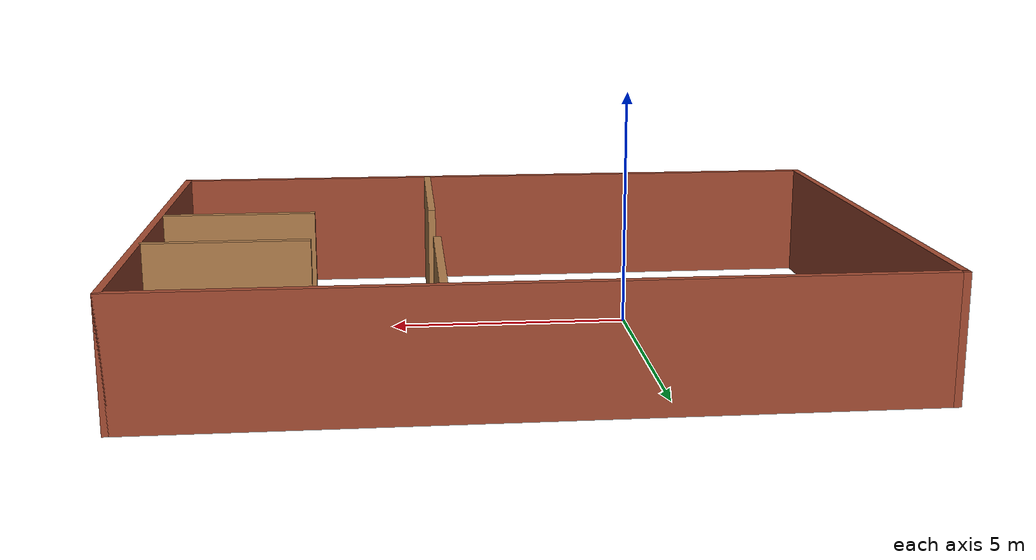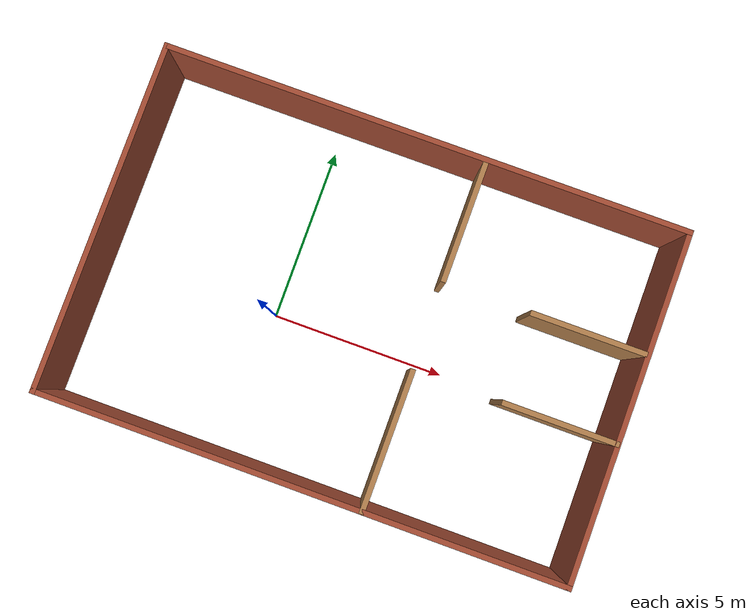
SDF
<?xml version='1.0'?>
<sdf version='1.7'>
  <model name='cafeteria_walls'>
    <pose>2.395 0.795 0 0 -0 0</pose>
    <link name='Wall_11'>
      <collision name='Wall_11_Collision'>
        <geometry>
          <box>
            <size>10 0.15 2.5</size>
          </box>
        </geometry>
        <pose>0 0 1.25 0 -0 0</pose>
      </collision>
      <visual name='Wall_11_Visual'>
        <pose>0 0 1.25 0 -0 0</pose>
        <geometry>
          <box>
            <size>10 0.15 2.5</size>
          </box>
        </geometry>
        <material>
          <script>
            <uri>file://media/materials/scripts/gazebo.material</uri>
            <name>Gazebo/Bricks</name>
          </script>
          <ambient>1 1 1 1</ambient>
        </material>
        <meta>
          <layer>0</layer>
        </meta>
      </visual>
      <pose>-7.425 -0 0 0 -0 -1.5708</pose>
    </link>
    <link name='Wall_13'>
      <collision name='Wall_13_Collision'>
        <geometry>
          <box>
            <size>15 0.15 2.5</size>
          </box>
        </geometry>
        <pose>0 0 1.25 0 -0 0</pose>
      </collision>
      <visual name='Wall_13_Visual'>
        <pose>0 0 1.25 0 -0 0</pose>
        <geometry>
          <box>
            <size>15 0.15 2.5</size>
          </box>
        </geometry>
        <material>
          <script>
            <uri>file://media/materials/scripts/gazebo.material</uri>
            <name>Gazebo/Bricks</name>
          </script>
          <ambient>1 1 1 1</ambient>
        </material>
        <meta>
          <layer>0</layer>
        </meta>
      </visual>
      <pose>0 -4.925 0 0 -0 0</pose>
    </link>
    <link name='Wall_14'>
      <collision name='Wall_14_Collision'>
        <geometry>
          <box>
            <size>10 0.15 2.5</size>
          </box>
        </geometry>
        <pose>0 0 1.25 0 -0 0</pose>
      </collision>
      <visual name='Wall_14_Visual'>
        <pose>0 0 1.25 0 -0 0</pose>
        <geometry>
          <box>
            <size>10 0.15 2.5</size>
          </box>
        </geometry>
        <material>
          <script>
            <uri>file://media/materials/scripts/gazebo.material</uri>
            <name>Gazebo/Bricks</name>
          </script>
          <ambient>1 1 1 1</ambient>
        </material>
        <meta>
          <layer>0</layer>
        </meta>
      </visual>
      <pose>7.425 -0 0 0 -0 1.5708</pose>
    </link>
    <link name='Wall_16'>
      <collision name='Wall_16_Collision'>
        <geometry>
          <box>
            <size>15 0.15 2.5</size>
          </box>
        </geometry>
        <pose>0 0 1.25 0 -0 0</pose>
      </collision>
      <visual name='Wall_16_Visual'>
        <pose>0 0 1.25 0 -0 0</pose>
        <geometry>
          <box>
            <size>15 0.15 2.5</size>
          </box>
        </geometry>
        <material>
          <script>
            <uri>file://media/materials/scripts/gazebo.material</uri>
            <name>Gazebo/Bricks</name>
          </script>
          <ambient>1 1 1 1</ambient>
        </material>
        <meta>
          <layer>0</layer>
        </meta>
      </visual>
      <pose>0 4.925 0 0 -0 0</pose>
    </link>
    <link name='Wall_18'>
      <collision name='Wall_18_Collision'>
        <geometry>
          <box>
            <size>4 0.15 2.5</size>
          </box>
        </geometry>
        <pose>0 0 1.25 0 -0 0</pose>
      </collision>
      <visual name='Wall_18_Visual'>
        <pose>0 0 1.25 0 -0 0</pose>
        <geometry>
          <box>
            <size>4 0.15 2.5</size>
          </box>
        </geometry>
        <material>
          <script>
            <uri>file://media/materials/scripts/gazebo.material</uri>
            <name>Gazebo/Wood</name>
          </script>
          <ambient>1 1 1 1</ambient>
        </material>
        <meta>
          <layer>0</layer>
        </meta>
      </visual>
      <pose>1.7461 -2.98461 0 0 -0 -1.5708</pose>
    </link>
    <link name='Wall_25'>
      <collision name='Wall_25_Collision'>
        <geometry>
          <box>
            <size>3.25 0.15 2.5</size>
          </box>
        </geometry>
        <pose>0 0 1.25 0 -0 0</pose>
      </collision>
      <visual name='Wall_25_Visual'>
        <pose>0 0 1.25 0 -0 0</pose>
        <geometry>
          <box>
            <size>3.25 0.15 2.5</size>
          </box>
        </geometry>
        <material>
          <script>
            <uri>file://media/materials/scripts/gazebo.material</uri>
            <name>Gazebo/Wood</name>
          </script>
          <ambient>1 1 1 1</ambient>
        </material>
        <meta>
          <layer>0</layer>
        </meta>
      </visual>
      <pose>5.83736 -1.01324 0 0 -0 3.14159</pose>
    </link>
    <link name='Wall_28'>
      <collision name='Wall_28_Collision'>
        <geometry>
          <box>
            <size>3.5 0.15 2.5</size>
          </box>
        </geometry>
        <pose>0 0 1.25 0 -0 0</pose>
      </collision>
      <visual name='Wall_28_Visual'>
        <pose>0 0 1.25 0 -0 0</pose>
        <geometry>
          <box>
            <size>3.5 0.15 2.5</size>
          </box>
        </geometry>
        <material>
          <script>
            <uri>file://media/materials/scripts/gazebo.material</uri>
            <name>Gazebo/Wood</name>
          </script>
          <ambient>1 1 1 1</ambient>
        </material>
        <meta>
          <layer>0</layer>
        </meta>
      </visual>
      <pose>1.70959 3.18836 0 0 -0 1.5708</pose>
    </link>
    <link name='Wall_30'>
      <collision name='Wall_30_Collision'>
        <geometry>
          <box>
            <size>3.25 0.15 2.5</size>
          </box>
        </geometry>
        <pose>0 0 1.25 0 -0 0</pose>
      </collision>
      <visual name='Wall_30_Visual'>
        <pose>0 0 1.25 0 -0 0</pose>
        <geometry>
          <box>
            <size>3.25 0.15 2.5</size>
          </box>
        </geometry>
        <material>
          <script>
            <uri>file://media/materials/scripts/gazebo.material</uri>
            <name>Gazebo/Wood</name>
          </script>
          <ambient>1 1 1 1</ambient>
        </material>
        <meta>
          <layer>0</layer>
        </meta>
      </visual>
      <pose>5.76799 1.46299 0 0 -0 0</pose>
    </link>
    <static>1</static>
  </model>
</sdf>
